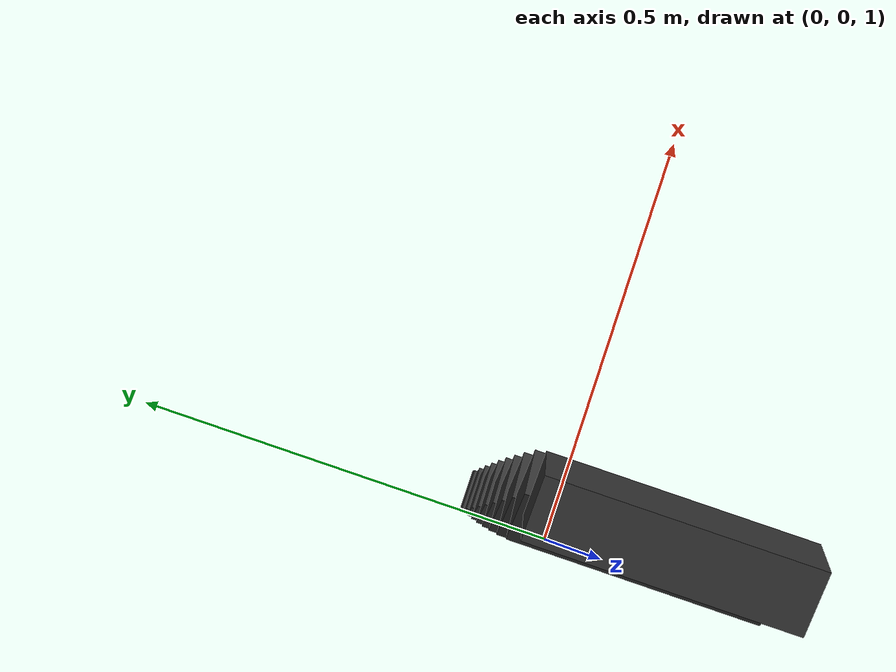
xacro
<?xml version="1.0"?>
<robot xmlns:xacro="http://www.ros.org/wiki/xacro" name="kinect_link">
 <!-- ADD a Kinect sensor: first the visual/collision/inertial box -->
  <link name="world">
      <origin xyz="0.0 0.0 0.0"/>
  </link>
    <link name="base_link">
  </link>

  <joint name="kinect_jnt" type="fixed">
      <parent link="base_link"/>
      <child link="kinect_link"/>
      <!--origin rpy="0.0 1.5708 1.5708" xyz="0 0.0 0.5"/-->
      <axis xyz="0 1 0" />
      <origin xyz="0.027 0.0 1.810" rpy="0.0 1.2 0"/>
  </joint>

    <joint name="world_jnt" type="fixed">
      <parent link="world"/>
      <child link="base_link"/>
  </joint>

    <link name="kinect_link">
      <collision>
          <origin xyz="0 0 0" rpy="0 0 0"/>
          <geometry>
              <!-- coarse model; a simple box -->
              <box size="0.05 0.2 0.05"/>
          </geometry>
      </collision>

      <visual>
          <origin xyz="0 0 0" rpy="0 0 0" />
          <geometry>
              <box size="0.05 0.2 0.05" />
          </geometry>
          <material name="kinect_gray">
              <color rgba="0.2 0.2 0.2 1.0"/>
          </material>
      </visual>

      <inertial>
          <mass value="0.1" />
          <origin xyz="0 0 0" rpy="0 0 0"/>
          <inertia ixx="0.001" ixy="0" ixz="0" iyy="0.001" iyz="0" izz="0.001" />
      </inertial>
  </link>
  <joint name="kinect_jnt2" type="fixed">
      <parent link="base_link"/>
      <child link="kinect_link2"/>
      <!--origin rpy="0.0 1.5708 1.5708" xyz="0 0.0 0.5"/-->
      <axis xyz="0 1 0" />
      <origin xyz="0.027 0.0 1.10" rpy="0.0 0.2 0"/>
  </joint>

    <link name="kinect_link2">
      <collision>
          <origin xyz="0 0 0" rpy="0 0 0"/>
          <geometry>
              <!-- coarse model; a simple box -->
              <box size="0.05 0.2 0.05"/>
          </geometry>
      </collision>

      <visual>
          <origin xyz="0 0 0" rpy="0 0 0" />
          <geometry>
              <box size="0.05 0.2 0.05" />
          </geometry>
          <material name="kinect_gray">
              <color rgba="0.2 0.2 0.2 1.0"/>
          </material>
      </visual>

      <inertial>
          <mass value="0.1" />
          <origin xyz="0 0 0" rpy="0 0 0"/>
          <inertia ixx="0.001" ixy="0" ixz="0" iyy="0.001" iyz="0" izz="0.001" />
      </inertial>
  </link>
<joint name="kinect_jnt3" type="fixed">
      <parent link="base_link"/>
      <child link="kinect_link3"/>
      <!--origin rpy="0.0 1.5708 1.5708" xyz="0 0.0 0.5"/-->
      <axis xyz="0 1 0" />
      <origin xyz="0.027 0.0 0.90" rpy="0.0 0.0 0"/>
  </joint>

    <link name="kinect_link3">
      <collision>
          <origin xyz="0 0 0" rpy="0 0 0"/>
          <geometry>
              <!-- coarse model; a simple box -->
              <box size="0.05 0.2 0.05"/>
          </geometry>
      </collision>

      <visual>
          <origin xyz="0 0 0" rpy="0 0 0" />
          <geometry>
              <box size="0.05 0.2 0.05" />
          </geometry>
          <material name="kinect_gray">
              <color rgba="0.2 0.2 0.2 1.0"/>
          </material>
      </visual>

      <inertial>
          <mass value="0.1" />
          <origin xyz="0 0 0" rpy="0 0 0"/>
          <inertia ixx="0.001" ixy="0" ixz="0" iyy="0.001" iyz="0" izz="0.001" />
      </inertial>
  </link>
<joint name="kinect_jnt4" type="fixed">
      <parent link="base_link"/>
      <child link="kinect_link4"/>
      <!--origin rpy="0.0 1.5708 1.5708" xyz="0 0.0 0.5"/-->
      <axis xyz="0 1 0" />
      <origin xyz="0.027 0.0 1.00" rpy="0.0 0.1 0"/>
  </joint>

    <link name="kinect_link4">
      <collision>
          <origin xyz="0 0 0" rpy="0 0 0"/>
          <geometry>
              <!-- coarse model; a simple box -->
              <box size="0.05 0.2 0.05"/>
          </geometry>
      </collision>

      <visual>
          <origin xyz="0 0 0" rpy="0 0 0" />
          <geometry>
              <box size="0.05 0.2 0.05" />
          </geometry>
          <material name="kinect_gray">
              <color rgba="0.2 0.2 0.2 1.0"/>
          </material>
      </visual>

      <inertial>
          <mass value="0.1" />
          <origin xyz="0 0 0" rpy="0 0 0"/>
          <inertia ixx="0.001" ixy="0" ixz="0" iyy="0.001" iyz="0" izz="0.001" />
      </inertial>
  </link>
<joint name="kinect_jnt5" type="fixed">
      <parent link="base_link"/>
      <child link="kinect_link5"/>
      <!--origin rpy="0.0 1.5708 1.5708" xyz="0 0.0 0.5"/-->
      <axis xyz="0 1 0" />
      <origin xyz="0.027 0.0 1.20" rpy="0.0 0.3 0"/>
  </joint>

    <link name="kinect_link5">
      <collision>
          <origin xyz="0 0 0" rpy="0 0 0"/>
          <geometry>
              <!-- coarse model; a simple box -->
              <box size="0.05 0.2 0.05"/>
          </geometry>
      </collision>

      <visual>
          <origin xyz="0 0 0" rpy="0 0 0" />
          <geometry>
              <box size="0.05 0.2 0.05" />
          </geometry>
          <material name="kinect_gray">
              <color rgba="0.2 0.2 0.2 1.0"/>
          </material>
      </visual>

      <inertial>
          <mass value="0.1" />
          <origin xyz="0 0 0" rpy="0 0 0"/>
          <inertia ixx="0.001" ixy="0" ixz="0" iyy="0.001" iyz="0" izz="0.001" />
      </inertial>
  </link>
<joint name="kinect_jnt6" type="fixed">
      <parent link="base_link"/>
      <child link="kinect_link6"/>
      <!--origin rpy="0.0 1.5708 1.5708" xyz="0 0.0 0.5"/-->
      <axis xyz="0 1 0" />
      <origin xyz="0.027 0.0 1.30" rpy="0.0 0.4 0"/>
  </joint>

    <link name="kinect_link6">
      <collision>
          <origin xyz="0 0 0" rpy="0 0 0"/>
          <geometry>
              <!-- coarse model; a simple box -->
              <box size="0.05 0.2 0.05"/>
          </geometry>
      </collision>

      <visual>
          <origin xyz="0 0 0" rpy="0 0 0" />
          <geometry>
              <box size="0.05 0.2 0.05" />
          </geometry>
          <material name="kinect_gray">
              <color rgba="0.2 0.2 0.2 1.0"/>
          </material>
      </visual>

      <inertial>
          <mass value="0.1" />
          <origin xyz="0 0 0" rpy="0 0 0"/>
          <inertia ixx="0.001" ixy="0" ixz="0" iyy="0.001" iyz="0" izz="0.001" />
      </inertial>
  </link>
<joint name="kinect_jnt7" type="fixed">
      <parent link="base_link"/>
      <child link="kinect_link7"/>
      <!--origin rpy="0.0 1.5708 1.5708" xyz="0 0.0 0.5"/-->
      <axis xyz="0 1 0" />
      <origin xyz="0.027 0.0 1.40" rpy="0.0 0.5 0"/>
  </joint>

    <link name="kinect_link7">
      <collision>
          <origin xyz="0 0 0" rpy="0 0 0"/>
          <geometry>
              <!-- coarse model; a simple box -->
              <box size="0.05 0.2 0.05"/>
          </geometry>
      </collision>

      <visual>
          <origin xyz="0 0 0" rpy="0 0 0" />
          <geometry>
              <box size="0.05 0.2 0.05" />
          </geometry>
          <material name="kinect_gray">
              <color rgba="0.2 0.2 0.2 1.0"/>
          </material>
      </visual>

      <inertial>
          <mass value="0.1" />
          <origin xyz="0 0 0" rpy="0 0 0"/>
          <inertia ixx="0.001" ixy="0" ixz="0" iyy="0.001" iyz="0" izz="0.001" />
      </inertial>
  </link>
<joint name="kinect_jnt8" type="fixed">
      <parent link="base_link"/>
      <child link="kinect_link8"/>
      <!--origin rpy="0.0 1.5708 1.5708" xyz="0 0.0 0.5"/-->
      <axis xyz="0 1 0" />
      <origin xyz="0.027 0.0 1.50" rpy="0.0 0.6 0"/>
  </joint>

    <link name="kinect_link8">
      <collision>
          <origin xyz="0 0 0" rpy="0 0 0"/>
          <geometry>
              <!-- coarse model; a simple box -->
              <box size="0.05 0.2 0.05"/>
          </geometry>
      </collision>

      <visual>
          <origin xyz="0 0 0" rpy="0 0 0" />
          <geometry>
              <box size="0.05 0.2 0.05" />
          </geometry>
          <material name="kinect_gray">
              <color rgba="0.2 0.2 0.2 1.0"/>
          </material>
      </visual>

      <inertial>
          <mass value="0.1" />
          <origin xyz="0 0 0" rpy="0 0 0"/>
          <inertia ixx="0.001" ixy="0" ixz="0" iyy="0.001" iyz="0" izz="0.001" />
      </inertial>
  </link>
<joint name="kinect_jnt9" type="fixed">
      <parent link="base_link"/>
      <child link="kinect_link9"/>
      <!--origin rpy="0.0 1.5708 1.5708" xyz="0 0.0 0.5"/-->
      <axis xyz="0 1 0" />
      <origin xyz="0.027 0.0 1.60" rpy="0.0 0.7 0"/>
  </joint>

    <link name="kinect_link9">
      <collision>
          <origin xyz="0 0 0" rpy="0 0 0"/>
          <geometry>
              <!-- coarse model; a simple box -->
              <box size="0.05 0.2 0.05"/>
          </geometry>
      </collision>

      <visual>
          <origin xyz="0 0 0" rpy="0 0 0" />
          <geometry>
              <box size="0.05 0.2 0.05" />
          </geometry>
          <material name="kinect_gray">
              <color rgba="0.2 0.2 0.2 1.0"/>
          </material>
      </visual>

      <inertial>
          <mass value="0.1" />
          <origin xyz="0 0 0" rpy="0 0 0"/>
          <inertia ixx="0.001" ixy="0" ixz="0" iyy="0.001" iyz="0" izz="0.001" />
      </inertial>
  </link>
<joint name="kinect_jnt10" type="fixed">
      <parent link="base_link"/>
      <child link="kinect_link10"/>
      <!--origin rpy="0.0 1.5708 1.5708" xyz="0 0.0 0.5"/-->
      <axis xyz="0 1 0" />
      <origin xyz="0.027 0.0 1.70" rpy="0.0 0.8 0"/>
  </joint>

    <link name="kinect_link10">
      <collision>
          <origin xyz="0 0 0" rpy="0 0 0"/>
          <geometry>
              <!-- coarse model; a simple box -->
              <box size="0.05 0.2 0.05"/>
          </geometry>
      </collision>

      <visual>
          <origin xyz="0 0 0" rpy="0 0 0" />
          <geometry>
              <box size="0.05 0.2 0.05" />
          </geometry>
          <material name="kinect_gray">
              <color rgba="0.2 0.2 0.2 1.0"/>
          </material>
      </visual>

      <inertial>
          <mass value="0.1" />
          <origin xyz="0 0 0" rpy="0 0 0"/>
          <inertia ixx="0.001" ixy="0" ixz="0" iyy="0.001" iyz="0" izz="0.001" />
      </inertial>
  </link>

  <!--the above displays a box meant to imply Kinect-->
  <!--now set the position/orientation of the above box: -->
<!-- end wsn adding kinect link; -->

  <!-- wsn: add kinect sensor emulation -->
<gazebo reference="kinect_link">
    <sensor type="depth" name="openni_camera_camera">
        <always_on>1</always_on>
        <visualize>true</visualize>
        <camera>
            <horizontal_fov>1.047</horizontal_fov>
            <image>
                <width>640</width>
                <height>480</height>
                <format>R8G8B8</format>
            </image>
            <depth_camera>

            </depth_camera>
            <clip>
                <near>0.1</near>
                <far>100</far>
            </clip>
        </camera>
        <plugin name="camera_controller" filename="libgazebo_ros_openni_kinect.so">
            <alwaysOn>true</alwaysOn>
                <updateRate>0.1</updateRate>
                <cameraName>kinect</cameraName>
                <frameName>kinect_pc_frame</frameName>
            <imageTopicName>rgb/image_raw</imageTopicName>
            <depthImageTopicName>depth/image_raw</depthImageTopicName>
            <pointCloudTopicName>depth/points</pointCloudTopicName>
            <cameraInfoTopicName>rgb/camera_info</cameraInfoTopicName>
            <depthImageCameraInfoTopicName>depth/camera_info</depthImageCameraInfoTopicName>
            <pointCloudCutoff>0.4</pointCloudCutoff>
                <hackBaseline>0.07</hackBaseline>
                <distortionK1>0.0</distortionK1>
                <distortionK2>0.0</distortionK2>
                <distortionK3>0.0</distortionK3>
                <distortionT1>0.0</distortionT1>
                <distortionT2>0.0</distortionT2>
            <CxPrime>0.0</CxPrime>
            <Cx>0.0</Cx>
            <Cy>0.0</Cy>
            <focalLength>0.0</focalLength>
            </plugin>
    </sensor>
</gazebo>
<gazebo reference="kinect_link2">
    <sensor type="depth" name="openni_camera_camera">
        <always_on>1</always_on>
        <visualize>true</visualize>
        <camera>
            <horizontal_fov>1.047</horizontal_fov>
            <image>
                <width>640</width>
                <height>480</height>
                <format>R8G8B8</format>
            </image>
            <depth_camera>

            </depth_camera>
            <clip>
                <near>0.1</near>
                <far>100</far>
            </clip>
        </camera>
        <plugin name="camera_controller" filename="libgazebo_ros_openni_kinect.so">
            <alwaysOn>true</alwaysOn>
                <updateRate>0.1</updateRate>
                <cameraName>kinect</cameraName>
                <frameName>kinect_pc_frame</frameName>
            <imageTopicName>rgb/image_raw</imageTopicName>
            <depthImageTopicName>depth/image_raw</depthImageTopicName>
            <pointCloudTopicName>depth/points</pointCloudTopicName>
            <cameraInfoTopicName>rgb/camera_info</cameraInfoTopicName>
            <depthImageCameraInfoTopicName>depth/camera_info</depthImageCameraInfoTopicName>
            <pointCloudCutoff>0.4</pointCloudCutoff>
                <hackBaseline>0.07</hackBaseline>
                <distortionK1>0.0</distortionK1>
                <distortionK2>0.0</distortionK2>
                <distortionK3>0.0</distortionK3>
                <distortionT1>0.0</distortionT1>
                <distortionT2>0.0</distortionT2>
            <CxPrime>0.0</CxPrime>
            <Cx>0.0</Cx>
            <Cy>0.0</Cy>
            <focalLength>0.0</focalLength>
            </plugin>
    </sensor>
</gazebo>
<gazebo reference="kinect_link2">
    <sensor type="depth" name="openni_camera_camera">
        <always_on>1</always_on>
        <visualize>true</visualize>
        <camera>
            <horizontal_fov>1.047</horizontal_fov>
            <image>
                <width>640</width>
                <height>480</height>
                <format>R8G8B8</format>
            </image>
            <depth_camera>

            </depth_camera>
            <clip>
                <near>0.1</near>
                <far>100</far>
            </clip>
        </camera>
        <plugin name="camera_controller" filename="libgazebo_ros_openni_kinect.so">
            <alwaysOn>true</alwaysOn>
                <updateRate>0.1</updateRate>
                <cameraName>kinect</cameraName>
                <frameName>kinect_pc_frame</frameName>
            <imageTopicName>rgb/image_raw</imageTopicName>
            <depthImageTopicName>depth/image_raw</depthImageTopicName>
            <pointCloudTopicName>depth/points</pointCloudTopicName>
            <cameraInfoTopicName>rgb/camera_info</cameraInfoTopicName>
            <depthImageCameraInfoTopicName>depth/camera_info</depthImageCameraInfoTopicName>
            <pointCloudCutoff>0.4</pointCloudCutoff>
                <hackBaseline>0.07</hackBaseline>
                <distortionK1>0.0</distortionK1>
                <distortionK2>0.0</distortionK2>
                <distortionK3>0.0</distortionK3>
                <distortionT1>0.0</distortionT1>
                <distortionT2>0.0</distortionT2>
            <CxPrime>0.0</CxPrime>
            <Cx>0.0</Cx>
            <Cy>0.0</Cy>
            <focalLength>0.0</focalLength>
            </plugin>
    </sensor>
</gazebo>
<gazebo reference="kinect_link3">
    <sensor type="depth" name="openni_camera_camera">
        <always_on>1</always_on>
        <visualize>true</visualize>
        <camera>
            <horizontal_fov>1.047</horizontal_fov>
            <image>
                <width>640</width>
                <height>480</height>
                <format>R8G8B8</format>
            </image>
            <depth_camera>

            </depth_camera>
            <clip>
                <near>0.1</near>
                <far>100</far>
            </clip>
        </camera>
        <plugin name="camera_controller" filename="libgazebo_ros_openni_kinect.so">
            <alwaysOn>true</alwaysOn>
                <updateRate>0.1</updateRate>
                <cameraName>kinect</cameraName>
                <frameName>kinect_pc_frame</frameName>
            <imageTopicName>rgb/image_raw</imageTopicName>
            <depthImageTopicName>depth/image_raw</depthImageTopicName>
            <pointCloudTopicName>depth/points</pointCloudTopicName>
            <cameraInfoTopicName>rgb/camera_info</cameraInfoTopicName>
            <depthImageCameraInfoTopicName>depth/camera_info</depthImageCameraInfoTopicName>
            <pointCloudCutoff>0.4</pointCloudCutoff>
                <hackBaseline>0.07</hackBaseline>
                <distortionK1>0.0</distortionK1>
                <distortionK2>0.0</distortionK2>
                <distortionK3>0.0</distortionK3>
                <distortionT1>0.0</distortionT1>
                <distortionT2>0.0</distortionT2>
            <CxPrime>0.0</CxPrime>
            <Cx>0.0</Cx>
            <Cy>0.0</Cy>
            <focalLength>0.0</focalLength>
            </plugin>
    </sensor>
</gazebo>
<gazebo reference="kinect_link4">
    <sensor type="depth" name="openni_camera_camera">
        <always_on>1</always_on>
        <visualize>true</visualize>
        <camera>
            <horizontal_fov>1.047</horizontal_fov>
            <image>
                <width>640</width>
                <height>480</height>
                <format>R8G8B8</format>
            </image>
            <depth_camera>

            </depth_camera>
            <clip>
                <near>0.1</near>
                <far>100</far>
            </clip>
        </camera>
        <plugin name="camera_controller" filename="libgazebo_ros_openni_kinect.so">
            <alwaysOn>true</alwaysOn>
                <updateRate>0.1</updateRate>
                <cameraName>kinect</cameraName>
                <frameName>kinect_pc_frame</frameName>
            <imageTopicName>rgb/image_raw</imageTopicName>
            <depthImageTopicName>depth/image_raw</depthImageTopicName>
            <pointCloudTopicName>depth/points</pointCloudTopicName>
            <cameraInfoTopicName>rgb/camera_info</cameraInfoTopicName>
            <depthImageCameraInfoTopicName>depth/camera_info</depthImageCameraInfoTopicName>
            <pointCloudCutoff>0.4</pointCloudCutoff>
                <hackBaseline>0.07</hackBaseline>
                <distortionK1>0.0</distortionK1>
                <distortionK2>0.0</distortionK2>
                <distortionK3>0.0</distortionK3>
                <distortionT1>0.0</distortionT1>
                <distortionT2>0.0</distortionT2>
            <CxPrime>0.0</CxPrime>
            <Cx>0.0</Cx>
            <Cy>0.0</Cy>
            <focalLength>0.0</focalLength>
            </plugin>
    </sensor>
</gazebo>
<gazebo reference="kinect_link5">
    <sensor type="depth" name="openni_camera_camera">
        <always_on>1</always_on>
        <visualize>true</visualize>
        <camera>
            <horizontal_fov>1.047</horizontal_fov>
            <image>
                <width>640</width>
                <height>480</height>
                <format>R8G8B8</format>
            </image>
            <depth_camera>

            </depth_camera>
            <clip>
                <near>0.1</near>
                <far>100</far>
            </clip>
        </camera>
        <plugin name="camera_controller" filename="libgazebo_ros_openni_kinect.so">
            <alwaysOn>true</alwaysOn>
                <updateRate>0.1</updateRate>
                <cameraName>kinect</cameraName>
                <frameName>kinect_pc_frame</frameName>
            <imageTopicName>rgb/image_raw</imageTopicName>
            <depthImageTopicName>depth/image_raw</depthImageTopicName>
            <pointCloudTopicName>depth/points</pointCloudTopicName>
            <cameraInfoTopicName>rgb/camera_info</cameraInfoTopicName>
            <depthImageCameraInfoTopicName>depth/camera_info</depthImageCameraInfoTopicName>
            <pointCloudCutoff>0.4</pointCloudCutoff>
                <hackBaseline>0.07</hackBaseline>
                <distortionK1>0.0</distortionK1>
                <distortionK2>0.0</distortionK2>
                <distortionK3>0.0</distortionK3>
                <distortionT1>0.0</distortionT1>
                <distortionT2>0.0</distortionT2>
            <CxPrime>0.0</CxPrime>
            <Cx>0.0</Cx>
            <Cy>0.0</Cy>
            <focalLength>0.0</focalLength>
            </plugin>
    </sensor>
</gazebo>
<gazebo reference="kinect_link6">
    <sensor type="depth" name="openni_camera_camera">
        <always_on>1</always_on>
        <visualize>true</visualize>
        <camera>
            <horizontal_fov>1.047</horizontal_fov>
            <image>
                <width>640</width>
                <height>480</height>
                <format>R8G8B8</format>
            </image>
            <depth_camera>

            </depth_camera>
            <clip>
                <near>0.1</near>
                <far>100</far>
            </clip>
        </camera>
        <plugin name="camera_controller" filename="libgazebo_ros_openni_kinect.so">
            <alwaysOn>true</alwaysOn>
                <updateRate>0.1</updateRate>
                <cameraName>kinect</cameraName>
                <frameName>kinect_pc_frame</frameName>
            <imageTopicName>rgb/image_raw</imageTopicName>
            <depthImageTopicName>depth/image_raw</depthImageTopicName>
            <pointCloudTopicName>depth/points</pointCloudTopicName>
            <cameraInfoTopicName>rgb/camera_info</cameraInfoTopicName>
            <depthImageCameraInfoTopicName>depth/camera_info</depthImageCameraInfoTopicName>
            <pointCloudCutoff>0.4</pointCloudCutoff>
                <hackBaseline>0.07</hackBaseline>
                <distortionK1>0.0</distortionK1>
                <distortionK2>0.0</distortionK2>
                <distortionK3>0.0</distortionK3>
                <distortionT1>0.0</distortionT1>
                <distortionT2>0.0</distortionT2>
            <CxPrime>0.0</CxPrime>
            <Cx>0.0</Cx>
            <Cy>0.0</Cy>
            <focalLength>0.0</focalLength>
            </plugin>
    </sensor>
</gazebo>
<gazebo reference="kinect_link7">
    <sensor type="depth" name="openni_camera_camera">
        <always_on>1</always_on>
        <visualize>true</visualize>
        <camera>
            <horizontal_fov>1.047</horizontal_fov>
            <image>
                <width>640</width>
                <height>480</height>
                <format>R8G8B8</format>
            </image>
            <depth_camera>

            </depth_camera>
            <clip>
                <near>0.1</near>
                <far>100</far>
            </clip>
        </camera>
        <plugin name="camera_controller" filename="libgazebo_ros_openni_kinect.so">
            <alwaysOn>true</alwaysOn>
                <updateRate>0.1</updateRate>
                <cameraName>kinect</cameraName>
                <frameName>kinect_pc_frame</frameName>
            <imageTopicName>rgb/image_raw</imageTopicName>
            <depthImageTopicName>depth/image_raw</depthImageTopicName>
            <pointCloudTopicName>depth/points</pointCloudTopicName>
            <cameraInfoTopicName>rgb/camera_info</cameraInfoTopicName>
            <depthImageCameraInfoTopicName>depth/camera_info</depthImageCameraInfoTopicName>
            <pointCloudCutoff>0.4</pointCloudCutoff>
                <hackBaseline>0.07</hackBaseline>
                <distortionK1>0.0</distortionK1>
                <distortionK2>0.0</distortionK2>
                <distortionK3>0.0</distortionK3>
                <distortionT1>0.0</distortionT1>
                <distortionT2>0.0</distortionT2>
            <CxPrime>0.0</CxPrime>
            <Cx>0.0</Cx>
            <Cy>0.0</Cy>
            <focalLength>0.0</focalLength>
            </plugin>
    </sensor>
</gazebo>
<gazebo reference="kinect_link8">
    <sensor type="depth" name="openni_camera_camera">
        <always_on>1</always_on>
        <visualize>true</visualize>
        <camera>
            <horizontal_fov>1.047</horizontal_fov>
            <image>
                <width>640</width>
                <height>480</height>
                <format>R8G8B8</format>
            </image>
            <depth_camera>

            </depth_camera>
            <clip>
                <near>0.1</near>
                <far>100</far>
            </clip>
        </camera>
        <plugin name="camera_controller" filename="libgazebo_ros_openni_kinect.so">
            <alwaysOn>true</alwaysOn>
                <updateRate>0.1</updateRate>
                <cameraName>kinect</cameraName>
                <frameName>kinect_pc_frame</frameName>
            <imageTopicName>rgb/image_raw</imageTopicName>
            <depthImageTopicName>depth/image_raw</depthImageTopicName>
            <pointCloudTopicName>depth/points</pointCloudTopicName>
            <cameraInfoTopicName>rgb/camera_info</cameraInfoTopicName>
            <depthImageCameraInfoTopicName>depth/camera_info</depthImageCameraInfoTopicName>
            <pointCloudCutoff>0.4</pointCloudCutoff>
                <hackBaseline>0.07</hackBaseline>
                <distortionK1>0.0</distortionK1>
                <distortionK2>0.0</distortionK2>
                <distortionK3>0.0</distortionK3>
                <distortionT1>0.0</distortionT1>
                <distortionT2>0.0</distortionT2>
            <CxPrime>0.0</CxPrime>
            <Cx>0.0</Cx>
            <Cy>0.0</Cy>
            <focalLength>0.0</focalLength>
            </plugin>
    </sensor>
</gazebo>
<gazebo reference="kinect_link9">
    <sensor type="depth" name="openni_camera_camera">
        <always_on>1</always_on>
        <visualize>true</visualize>
        <camera>
            <horizontal_fov>1.047</horizontal_fov>
            <image>
                <width>640</width>
                <height>480</height>
                <format>R8G8B8</format>
            </image>
            <depth_camera>

            </depth_camera>
            <clip>
                <near>0.1</near>
                <far>100</far>
            </clip>
        </camera>
        <plugin name="camera_controller" filename="libgazebo_ros_openni_kinect.so">
            <alwaysOn>true</alwaysOn>
                <updateRate>0.1</updateRate>
                <cameraName>kinect</cameraName>
                <frameName>kinect_pc_frame</frameName>
            <imageTopicName>rgb/image_raw</imageTopicName>
            <depthImageTopicName>depth/image_raw</depthImageTopicName>
            <pointCloudTopicName>depth/points</pointCloudTopicName>
            <cameraInfoTopicName>rgb/camera_info</cameraInfoTopicName>
            <depthImageCameraInfoTopicName>depth/camera_info</depthImageCameraInfoTopicName>
            <pointCloudCutoff>0.4</pointCloudCutoff>
                <hackBaseline>0.07</hackBaseline>
                <distortionK1>0.0</distortionK1>
                <distortionK2>0.0</distortionK2>
                <distortionK3>0.0</distortionK3>
                <distortionT1>0.0</distortionT1>
                <distortionT2>0.0</distortionT2>
            <CxPrime>0.0</CxPrime>
            <Cx>0.0</Cx>
            <Cy>0.0</Cy>
            <focalLength>0.0</focalLength>
            </plugin>
    </sensor>
</gazebo>
<gazebo reference="kinect_link10">
    <sensor type="depth" name="openni_camera_camera">
        <always_on>1</always_on>
        <visualize>true</visualize>
        <camera>
            <horizontal_fov>1.047</horizontal_fov>
            <image>
                <width>640</width>
                <height>480</height>
                <format>R8G8B8</format>
            </image>
            <depth_camera>

            </depth_camera>
            <clip>
                <near>0.1</near>
                <far>100</far>
            </clip>
        </camera>
        <plugin name="camera_controller" filename="libgazebo_ros_openni_kinect.so">
            <alwaysOn>true</alwaysOn>
                <updateRate>0.1</updateRate>
                <cameraName>kinect</cameraName>
                <frameName>kinect_pc_frame</frameName>
            <imageTopicName>rgb/image_raw</imageTopicName>
            <depthImageTopicName>depth/image_raw</depthImageTopicName>
            <pointCloudTopicName>depth/points</pointCloudTopicName>
            <cameraInfoTopicName>rgb/camera_info</cameraInfoTopicName>
            <depthImageCameraInfoTopicName>depth/camera_info</depthImageCameraInfoTopicName>
            <pointCloudCutoff>0.4</pointCloudCutoff>
                <hackBaseline>0.07</hackBaseline>
                <distortionK1>0.0</distortionK1>
                <distortionK2>0.0</distortionK2>
                <distortionK3>0.0</distortionK3>
                <distortionT1>0.0</distortionT1>
                <distortionT2>0.0</distortionT2>
            <CxPrime>0.0</CxPrime>
            <Cx>0.0</Cx>
            <Cy>0.0</Cy>
            <focalLength>0.0</focalLength>
            </plugin>
    </sensor>
</gazebo>
</robot>
